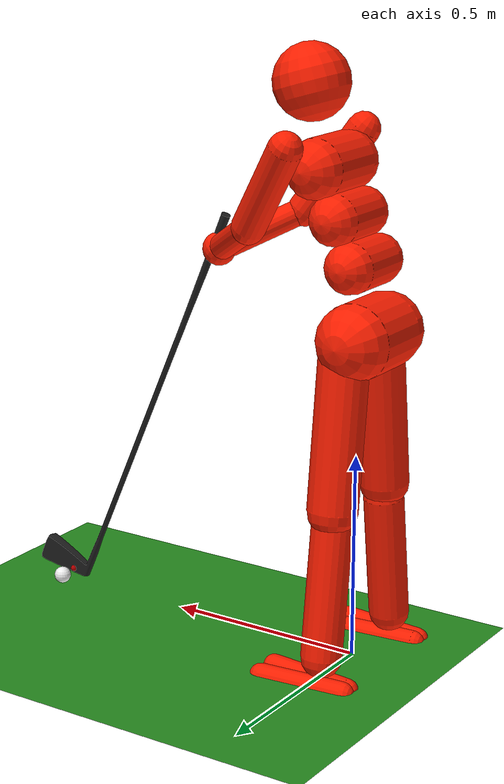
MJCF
<mujoco model="IEO Humanoid body">

  <!-- 1 ms resolves the strike; verified against a 0.5 ms simulation. -->
  <option timestep="0.001" gravity="0 0 -9.81"/>

  <asset>
    <texture type="skybox" builtin="gradient" rgb1=".3 .5 .7" rgb2="0 0 0" width="512" height="512"/>
    <texture name="body" type="cube" builtin="flat" mark="cross" width="127" height="1278"
             rgb1="1 .35 .05" rgb2="1 .35 .05" markrgb="1 1 1" random="0.01"/>
    <material name="body" texture="body" texuniform="true" rgba="1 .35 .05 1"/>
    <material name="club" rgba="0.12 0.12 0.12 1"/>
    <material name="ball" rgba="0.95 0.95 0.95 1"/>
    <material name="grass" rgba="0.15 0.55 0.12 1" reflectance="0.05"/>
    <mesh name="golf_club_mesh" file="golf_club.stl" scale="0.0103 0.0103 0.0103"/>
    <texture name="grid" type="2d" builtin="checker" width="512" height="512" rgb1=".1 .2 .3" rgb2=".2 .3 .4"/>
    <material name="grid" texture="grid" texrepeat="1 1" texuniform="true" reflectance=".2"/>
  </asset>

  <default>
    <motor ctrlrange="-1 1" ctrllimited="true"/>
    <default class="body">
      <geom type="capsule" condim="1" friction=".7" solimp=".9 .99 .003" solref=".015 1" material="body"/>
      <joint type="hinge" damping="15" stiffness="80" armature=".01" limited="true" solimplimit="0 .99 .01"/>
      <default class="big_joint">
        <joint damping="20" stiffness="100"/>
        <default class="big_stiff_joint">
          <joint damping="25" stiffness="140"/>
        </default>
      </default>
    </default>
  </default>

  <visual>
    <map force="0.1" zfar="30"/>
    <rgba haze="0.15 0.25 0.35 1"/>
    <quality shadowsize="4096"/>
    <global offwidth="800" offheight="800"/>
  </visual>

  <worldbody>

    <!-- Câmara fixa em +X, voltada para a frente do jogador. -->
    <camera name="front_fixed" pos="3.3 0 1.1" xyaxes="0 1 0 0 0 1" fovy="50"/>

    <!-- CHÃO -->
    <geom name="floor" type="plane" size="5 5 0.1" material="grass" contype="1" conaffinity="1"/>

    <!-- Bola centrada à frente do jogador, apoiada no chão. -->
    <body name="golf_ball" pos="0.85 0.042 0.022">
      <freejoint name="golf_ball_free"/>
      <geom name="golf_ball_geom" type="sphere" size="0.0213" mass="0.046" material="ball"/>
    </body>

    <body name="torso" pos="0 0 1.22" childclass="body">
      <camera name="back" pos="-3 0 1" xyaxes="0 -1 0 1 0 2" mode="trackcom"/>
      <camera name="side" pos="0 -3 1" xyaxes="1 0 0 0 1 2" mode="trackcom"/>
      <freejoint name="root"/>

      <!-- CINTURA -->
      <body name="lower_waist" pos="-.01 0 -.26">
        <geom name="lower_waist" fromto="0 -.06 0 0 .06 0" size=".06" mass="3.790639"/>

        <!-- PELVE -->
        <body name="pelvis" pos="0 0 -.165">
          <geom name="butt" fromto="-.02 -.07 0 -.02 .07 0" size=".09" mass="11.087618"/>

          <!-- PERNA DIREITA FIXA -->
          <body name="right_thigh" pos="0 -.08 -.04">
            <geom name="right_thigh" fromto="0 0 0 0 -.04 -.35" size=".06" mass="6.948605"/>
            <body name="right_shin" pos="0 -.04 -.388">
              <geom name="right_shin" fromto="0 0 0 0 -.04 -.31" size=".049" mass="4.051395"/>
              <body name="right_foot" pos="0 -.04 -.375">
                <geom name="right_right_foot" fromto="-.07 -.02 0 .14 -.04 0" size=".027" mass="0.5"/>
                <geom name="left_right_foot" fromto="-.07 0 0 .14 .02 0" size=".027" mass="0.5"/>
              </body>
            </body>
          </body>

          <!-- PERNA ESQUERDA FIXA -->
          <body name="left_thigh" pos="0 .08 -.04">
            <geom name="left_thigh" fromto="0 0 0 0 .04 -.35" size=".06" mass="6.948605"/>
            <body name="left_shin" pos="0 .04 -.388">
              <geom name="left_shin" fromto="0 0 0 0 .04 -.31" size=".049" mass="4.051395"/>
              <body name="left_foot" pos="0 .04 -.375">
                <geom name="left_left_foot" fromto="-.07 .02 0 .14 .04 0" size=".027" mass="0.5"/>
                <geom name="right_left_foot" fromto="-.07 0 0 .14 -.02 0" size=".027" mass="0.5"/>
              </body>
            </body>
          </body>
        </body>
      </body>

      <!-- O swing roda em torno de um eixo vertical, antes da inclinação do tronco. -->
      <body name="swing_axis" pos="-.01 0 -.29">
        <joint name="torso_turn" type="hinge" axis="0 0 1" range="-90 90" damping="20"/>
      <body name="upper_torso" quat=".994522 0 .15 0">
        <geom name="spine" fromto="0 0 0 .01 0 .26" size=".055" rgba="0 0 0 0" mass="5.311711"/>
        <geom name="torso" fromto=".01 -.07 .26 .01 .07 .26" size=".07" mass="6.019394"/>
        <geom name="upper_waist" fromto="0 -.06 .14 0 .06 .14" size=".06" mass="3.790638"/>

        <!-- CABEÇA -->
        <body name="head" pos=".01 0 .45">
          <geom name="head" type="sphere" size=".09" mass="5"/>
          <camera name="egocentric" pos=".09 0 0" xyaxes="0 -1 0 .1 0 1" fovy="80"/>
        </body>

      <!-- BRAÇO DIREITO -->
      <body name="right_upper_arm" pos=".01 -.17 .32">
        <joint name="right_shoulder1" axis="2 1 1" range="-100 100"/>
        <joint name="right_shoulder2" axis="0 -1 1" range="-100 100"/>
        <geom name="right_upper_arm" fromto="0 0 0 .18 .05 -.15" size=".04" mass="1.746276"/>
        <body name="right_lower_arm" pos=".18 .05 -.15">
          <!-- Cotovelo fixo; sem DOF. -->
          <geom name="right_lower_arm" fromto="0 0 0 .18 .12 -.04" size=".031" mass="0.935767"/>
          <body name="right_hand" pos=".18 .12 -.04" quat="0.97 -0.01 0.25881905 0">
            <!-- A mão mantém a pega; apenas o pulso tem DOF. -->
            <joint name="right_wrist_x" axis="1 0 0" range="-45 45"/>
            <joint name="right_wrist_y" axis="0 1 0" range="-60 45"/>
            <geom name="right_hand" type="sphere" size=".04" mass="0.317957"/>
            <site name="shared_grip" size=".008" rgba="0 0 0 0"/>
            <site name="club_head" pos=".989 .010 -.286" size=".008" rgba="1 0 0 .7"/>
            <!-- TACO DE GOLFE -->
            <geom
              name="golf_club"
              type="mesh"
              density="1000"
              mesh="golf_club_mesh"
              material="club"
              pos="0.9751 0 -0.327"
              quat="0.88295 0 -0.46947 0"
              contype="1"
              conaffinity="1"
            />
          </body>
        </body>
      </body>

      <!-- BRAÇO ESQUERDO -->
      <body name="left_upper_arm" pos=".01 .17 .32">
        <joint name="left_shoulder1" axis="2 -1 1" range="-100 100"/>
        <joint name="left_shoulder2" axis="0 1 1" range="-100 100"/>
        <geom name="left_upper_arm" fromto="0 0 0 .18 -.05 -.15" size=".04" mass="1.953298"/>
        <body name="left_lower_arm" pos=".18 -.05 -.15">
          <!-- Cotovelo fixo; sem DOF. -->
          <geom name="left_lower_arm" fromto="0 0 0 .18 -.12 -.04" size=".031" mass="1.046702"/>
          <site name="left_grip" pos=".18 -.12 -.04" size=".008" rgba="0 0 0 0"/>
        </body>
      </body>
      </body>
      </body>
    </body>
  </worldbody>

  <contact>
    <exclude body1="right_lower_arm" body2="left_lower_arm"/>
    <exclude body1="right_hand" body2="left_lower_arm"/>
  </contact>

  <equality>
    <connect site1="left_grip" site2="shared_grip" solref=".002 1" solimp=".99 .999 .001"/>
  </equality>

  <actuator>
    <motor name="torso_turn_motor" joint="torso_turn" ctrlrange="-250 250"/>
    <motor name="right_shoulder1_motor" joint="right_shoulder1" ctrlrange="-180 180"/>
    <motor name="right_shoulder2_motor" joint="right_shoulder2" ctrlrange="-180 180"/>
    <motor name="right_wrist_x_motor" joint="right_wrist_x" ctrlrange="-90 90"/>
    <motor name="right_wrist_y_motor" joint="right_wrist_y" ctrlrange="-90 90"/>
    <motor name="left_shoulder1_motor" joint="left_shoulder1" ctrlrange="-180 180"/>
    <motor name="left_shoulder2_motor" joint="left_shoulder2" ctrlrange="-180 180"/>
  </actuator>

</mujoco>
